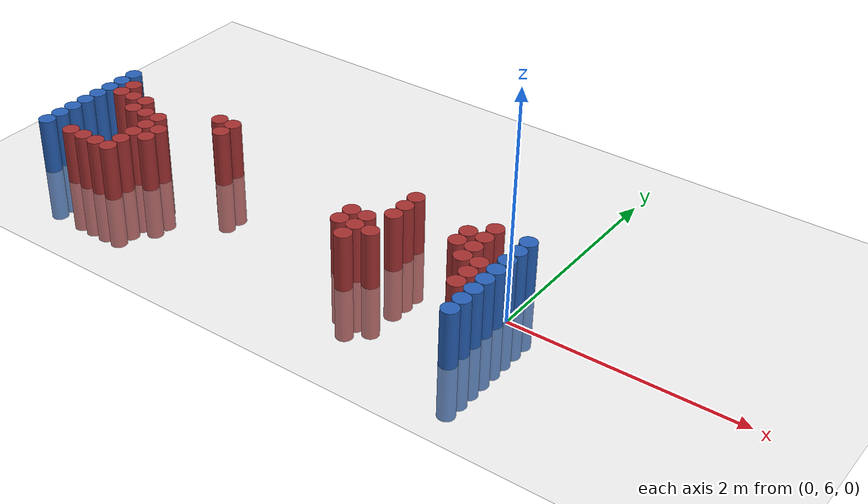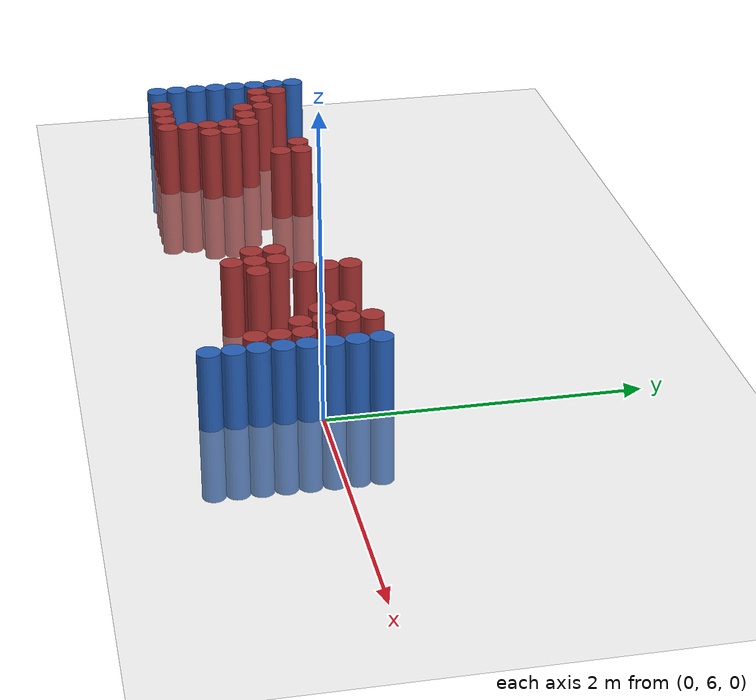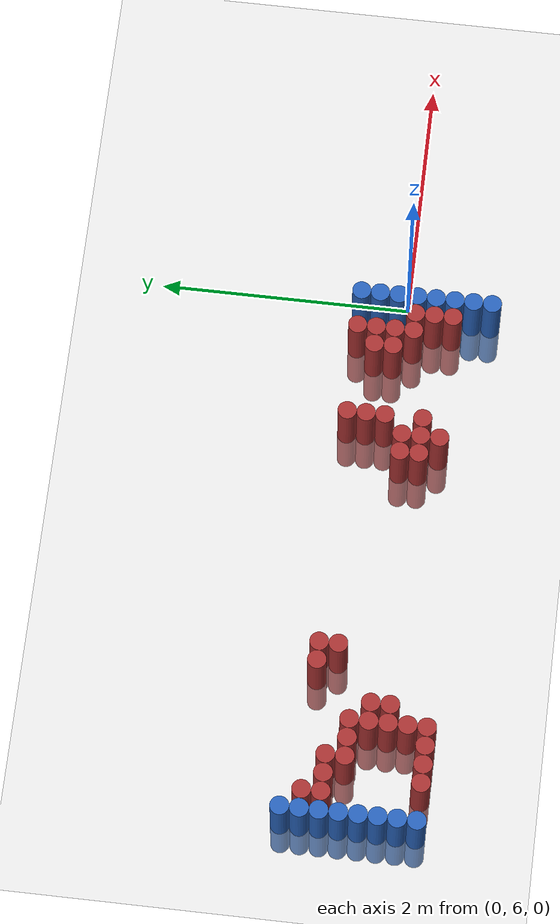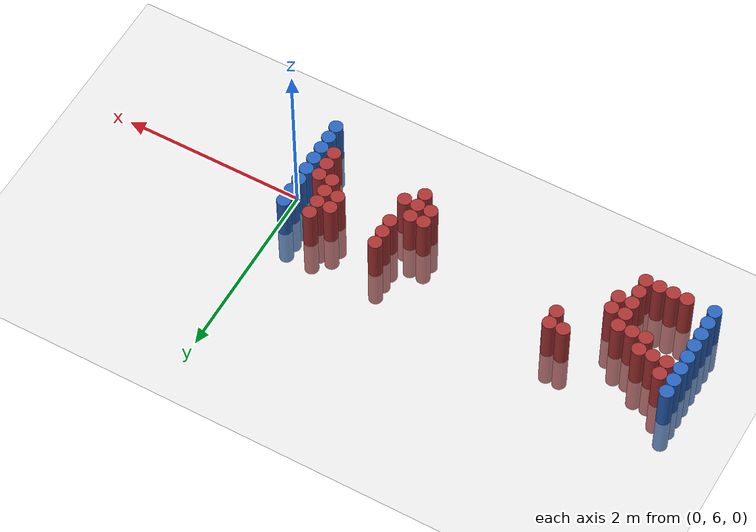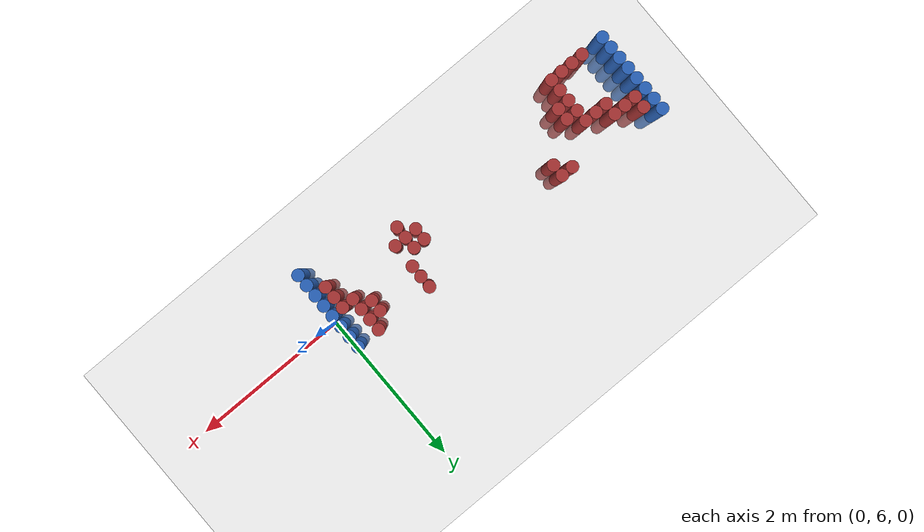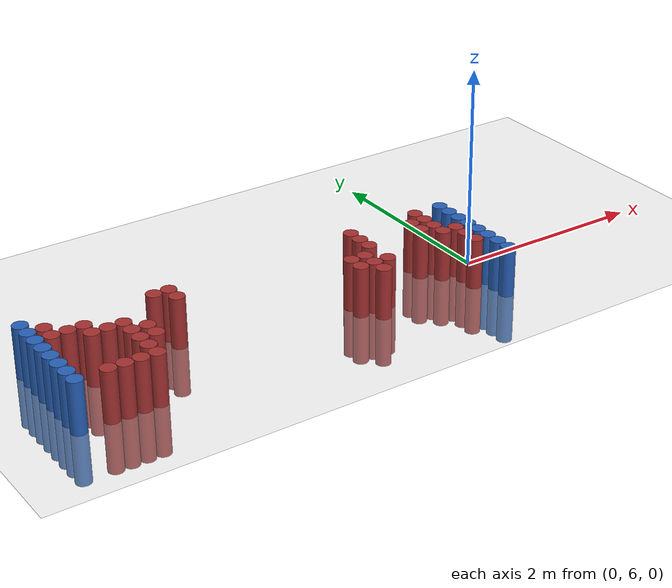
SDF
<sdf version="1.6">
 <world name="default">
  <model name="ground_plane">
   <static>1</static>
   <link name="link">
    <collision name="collision">
     <geometry><plane><normal>0 0 1</normal><size>100 100</size></plane></geometry>
     <surface><friction><ode><mu>100</mu><mu2>50</mu2></ode></friction></surface>
    </collision>
    <visual name="visual">
     <cast_shadows>0</cast_shadows>
     <geometry><plane><normal>0 0 1</normal><size>100 100</size></plane></geometry>
     <material>
      <script><uri>file://media/materials/scripts/gazebo.material</uri><name>Gazebo/Grey</name></script>
     </material>
    </visual>
   </link>
  </model>
  <model name="unit_cylinder_98">
   <static>1</static>
   <pose>-4.425000 5.475000 0.000000 0.000000 0.000000 0.000000</pose>
   <link name="link">
    <inertial>
     <mass>1</mass>
     <inertia><ixx>0.145833</ixx><ixy>0</ixy><ixz>0</ixz><iyy>0.145833</iyy><iyz>0</iyz><izz>0.125</izz></inertia>
    </inertial>
    <collision name="collision">
     <geometry><cylinder><radius>0.075000</radius><length>1</length></cylinder></geometry>
    </collision>
    <visual name="visual">
     <geometry><cylinder><radius>0.075000</radius><length>1</length></cylinder></geometry>
     <material>
      <ambient>0.152000 0.379000 0.720000 1</ambient>
      <diffuse>0.152000 0.379000 0.720000 1</diffuse>
     </material>
     <material>
      <script><name>Gazebo/Grey</name><uri>file://media/materials/scripts/gazebo.material</uri></script>
     </material>
    </visual>
   </link>
  </model>
  <model name="unit_cylinder_99">
   <static>1</static>
   <pose>-4.425000 5.625000 0.000000 0.000000 0.000000 0.000000</pose>
   <link name="link">
    <inertial>
     <mass>1</mass>
     <inertia><ixx>0.145833</ixx><ixy>0</ixy><ixz>0</ixz><iyy>0.145833</iyy><iyz>0</iyz><izz>0.125</izz></inertia>
    </inertial>
    <collision name="collision">
     <geometry><cylinder><radius>0.075000</radius><length>1</length></cylinder></geometry>
    </collision>
    <visual name="visual">
     <geometry><cylinder><radius>0.075000</radius><length>1</length></cylinder></geometry>
     <material>
      <ambient>0.152000 0.379000 0.720000 1</ambient>
      <diffuse>0.152000 0.379000 0.720000 1</diffuse>
     </material>
     <material>
      <script><name>Gazebo/Grey</name><uri>file://media/materials/scripts/gazebo.material</uri></script>
     </material>
    </visual>
   </link>
  </model>
  <model name="unit_cylinder_100">
   <static>1</static>
   <pose>-4.425000 5.775000 0.000000 0.000000 0.000000 0.000000</pose>
   <link name="link">
    <inertial>
     <mass>1</mass>
     <inertia><ixx>0.145833</ixx><ixy>0</ixy><ixz>0</ixz><iyy>0.145833</iyy><iyz>0</iyz><izz>0.125</izz></inertia>
    </inertial>
    <collision name="collision">
     <geometry><cylinder><radius>0.075000</radius><length>1</length></cylinder></geometry>
    </collision>
    <visual name="visual">
     <geometry><cylinder><radius>0.075000</radius><length>1</length></cylinder></geometry>
     <material>
      <ambient>0.152000 0.379000 0.720000 1</ambient>
      <diffuse>0.152000 0.379000 0.720000 1</diffuse>
     </material>
     <material>
      <script><name>Gazebo/Grey</name><uri>file://media/materials/scripts/gazebo.material</uri></script>
     </material>
    </visual>
   </link>
  </model>
  <model name="unit_cylinder_101">
   <static>1</static>
   <pose>-4.425000 5.925000 0.000000 0.000000 0.000000 0.000000</pose>
   <link name="link">
    <inertial>
     <mass>1</mass>
     <inertia><ixx>0.145833</ixx><ixy>0</ixy><ixz>0</ixz><iyy>0.145833</iyy><iyz>0</iyz><izz>0.125</izz></inertia>
    </inertial>
    <collision name="collision">
     <geometry><cylinder><radius>0.075000</radius><length>1</length></cylinder></geometry>
    </collision>
    <visual name="visual">
     <geometry><cylinder><radius>0.075000</radius><length>1</length></cylinder></geometry>
     <material>
      <ambient>0.152000 0.379000 0.720000 1</ambient>
      <diffuse>0.152000 0.379000 0.720000 1</diffuse>
     </material>
     <material>
      <script><name>Gazebo/Grey</name><uri>file://media/materials/scripts/gazebo.material</uri></script>
     </material>
    </visual>
   </link>
  </model>
  <model name="unit_cylinder_102">
   <static>1</static>
   <pose>-4.425000 6.075000 0.000000 0.000000 0.000000 0.000000</pose>
   <link name="link">
    <inertial>
     <mass>1</mass>
     <inertia><ixx>0.145833</ixx><ixy>0</ixy><ixz>0</ixz><iyy>0.145833</iyy><iyz>0</iyz><izz>0.125</izz></inertia>
    </inertial>
    <collision name="collision">
     <geometry><cylinder><radius>0.075000</radius><length>1</length></cylinder></geometry>
    </collision>
    <visual name="visual">
     <geometry><cylinder><radius>0.075000</radius><length>1</length></cylinder></geometry>
     <material>
      <ambient>0.152000 0.379000 0.720000 1</ambient>
      <diffuse>0.152000 0.379000 0.720000 1</diffuse>
     </material>
     <material>
      <script><name>Gazebo/Grey</name><uri>file://media/materials/scripts/gazebo.material</uri></script>
     </material>
    </visual>
   </link>
  </model>
  <model name="unit_cylinder_103">
   <static>1</static>
   <pose>-4.425000 6.225000 0.000000 0.000000 0.000000 0.000000</pose>
   <link name="link">
    <inertial>
     <mass>1</mass>
     <inertia><ixx>0.145833</ixx><ixy>0</ixy><ixz>0</ixz><iyy>0.145833</iyy><iyz>0</iyz><izz>0.125</izz></inertia>
    </inertial>
    <collision name="collision">
     <geometry><cylinder><radius>0.075000</radius><length>1</length></cylinder></geometry>
    </collision>
    <visual name="visual">
     <geometry><cylinder><radius>0.075000</radius><length>1</length></cylinder></geometry>
     <material>
      <ambient>0.152000 0.379000 0.720000 1</ambient>
      <diffuse>0.152000 0.379000 0.720000 1</diffuse>
     </material>
     <material>
      <script><name>Gazebo/Grey</name><uri>file://media/materials/scripts/gazebo.material</uri></script>
     </material>
    </visual>
   </link>
  </model>
  <model name="unit_cylinder_104">
   <static>1</static>
   <pose>-4.425000 6.375000 0.000000 0.000000 0.000000 0.000000</pose>
   <link name="link">
    <inertial>
     <mass>1</mass>
     <inertia><ixx>0.145833</ixx><ixy>0</ixy><ixz>0</ixz><iyy>0.145833</iyy><iyz>0</iyz><izz>0.125</izz></inertia>
    </inertial>
    <collision name="collision">
     <geometry><cylinder><radius>0.075000</radius><length>1</length></cylinder></geometry>
    </collision>
    <visual name="visual">
     <geometry><cylinder><radius>0.075000</radius><length>1</length></cylinder></geometry>
     <material>
      <ambient>0.152000 0.379000 0.720000 1</ambient>
      <diffuse>0.152000 0.379000 0.720000 1</diffuse>
     </material>
     <material>
      <script><name>Gazebo/Grey</name><uri>file://media/materials/scripts/gazebo.material</uri></script>
     </material>
    </visual>
   </link>
  </model>
  <model name="unit_cylinder_105">
   <static>1</static>
   <pose>-4.425000 6.525000 0.000000 0.000000 0.000000 0.000000</pose>
   <link name="link">
    <inertial>
     <mass>1</mass>
     <inertia><ixx>0.145833</ixx><ixy>0</ixy><ixz>0</ixz><iyy>0.145833</iyy><iyz>0</iyz><izz>0.125</izz></inertia>
    </inertial>
    <collision name="collision">
     <geometry><cylinder><radius>0.075000</radius><length>1</length></cylinder></geometry>
    </collision>
    <visual name="visual">
     <geometry><cylinder><radius>0.075000</radius><length>1</length></cylinder></geometry>
     <material>
      <ambient>0.152000 0.379000 0.720000 1</ambient>
      <diffuse>0.152000 0.379000 0.720000 1</diffuse>
     </material>
     <material>
      <script><name>Gazebo/Grey</name><uri>file://media/materials/scripts/gazebo.material</uri></script>
     </material>
    </visual>
   </link>
  </model>
  <model name="unit_cylinder_127">
   <static>1</static>
   <pose>-4.275000 6.225000 0.000000 0.000000 0.000000 0.000000</pose>
   <link name="link">
    <inertial>
     <mass>1</mass>
     <inertia><ixx>0.145833</ixx><ixy>0</ixy><ixz>0</ixz><iyy>0.145833</iyy><iyz>0</iyz><izz>0.125</izz></inertia>
    </inertial>
    <collision name="collision">
     <geometry><cylinder><radius>0.075000</radius><length>1</length></cylinder></geometry>
    </collision>
    <visual name="visual">
     <geometry><cylinder><radius>0.075000</radius><length>1</length></cylinder></geometry>
     <material>
      <ambient>0.648000 0.192000 0.192000 1</ambient>
      <diffuse>0.648000 0.192000 0.192000 1</diffuse>
     </material>
     <material>
      <script><name>Gazebo/Grey</name><uri>file://media/materials/scripts/gazebo.material</uri></script>
     </material>
    </visual>
   </link>
  </model>
  <model name="unit_cylinder_128">
   <static>1</static>
   <pose>-4.275000 6.375000 0.000000 0.000000 0.000000 0.000000</pose>
   <link name="link">
    <inertial>
     <mass>1</mass>
     <inertia><ixx>0.145833</ixx><ixy>0</ixy><ixz>0</ixz><iyy>0.145833</iyy><iyz>0</iyz><izz>0.125</izz></inertia>
    </inertial>
    <collision name="collision">
     <geometry><cylinder><radius>0.075000</radius><length>1</length></cylinder></geometry>
    </collision>
    <visual name="visual">
     <geometry><cylinder><radius>0.075000</radius><length>1</length></cylinder></geometry>
     <material>
      <ambient>0.648000 0.192000 0.192000 1</ambient>
      <diffuse>0.648000 0.192000 0.192000 1</diffuse>
     </material>
     <material>
      <script><name>Gazebo/Grey</name><uri>file://media/materials/scripts/gazebo.material</uri></script>
     </material>
    </visual>
   </link>
  </model>
  <model name="unit_cylinder_139">
   <static>1</static>
   <pose>-4.125000 5.475000 0.000000 0.000000 0.000000 0.000000</pose>
   <link name="link">
    <inertial>
     <mass>1</mass>
     <inertia><ixx>0.145833</ixx><ixy>0</ixy><ixz>0</ixz><iyy>0.145833</iyy><iyz>0</iyz><izz>0.125</izz></inertia>
    </inertial>
    <collision name="collision">
     <geometry><cylinder><radius>0.075000</radius><length>1</length></cylinder></geometry>
    </collision>
    <visual name="visual">
     <geometry><cylinder><radius>0.075000</radius><length>1</length></cylinder></geometry>
     <material>
      <ambient>0.648000 0.192000 0.192000 1</ambient>
      <diffuse>0.648000 0.192000 0.192000 1</diffuse>
     </material>
     <material>
      <script><name>Gazebo/Grey</name><uri>file://media/materials/scripts/gazebo.material</uri></script>
     </material>
    </visual>
   </link>
  </model>
  <model name="unit_cylinder_140">
   <static>1</static>
   <pose>-4.125000 6.225000 0.000000 0.000000 0.000000 0.000000</pose>
   <link name="link">
    <inertial>
     <mass>1</mass>
     <inertia><ixx>0.145833</ixx><ixy>0</ixy><ixz>0</ixz><iyy>0.145833</iyy><iyz>0</iyz><izz>0.125</izz></inertia>
    </inertial>
    <collision name="collision">
     <geometry><cylinder><radius>0.075000</radius><length>1</length></cylinder></geometry>
    </collision>
    <visual name="visual">
     <geometry><cylinder><radius>0.075000</radius><length>1</length></cylinder></geometry>
     <material>
      <ambient>0.648000 0.192000 0.192000 1</ambient>
      <diffuse>0.648000 0.192000 0.192000 1</diffuse>
     </material>
     <material>
      <script><name>Gazebo/Grey</name><uri>file://media/materials/scripts/gazebo.material</uri></script>
     </material>
    </visual>
   </link>
  </model>
  <model name="unit_cylinder_153">
   <static>1</static>
   <pose>-3.975000 5.475000 0.000000 0.000000 0.000000 0.000000</pose>
   <link name="link">
    <inertial>
     <mass>1</mass>
     <inertia><ixx>0.145833</ixx><ixy>0</ixy><ixz>0</ixz><iyy>0.145833</iyy><iyz>0</iyz><izz>0.125</izz></inertia>
    </inertial>
    <collision name="collision">
     <geometry><cylinder><radius>0.075000</radius><length>1</length></cylinder></geometry>
    </collision>
    <visual name="visual">
     <geometry><cylinder><radius>0.075000</radius><length>1</length></cylinder></geometry>
     <material>
      <ambient>0.648000 0.192000 0.192000 1</ambient>
      <diffuse>0.648000 0.192000 0.192000 1</diffuse>
     </material>
     <material>
      <script><name>Gazebo/Grey</name><uri>file://media/materials/scripts/gazebo.material</uri></script>
     </material>
    </visual>
   </link>
  </model>
  <model name="unit_cylinder_154">
   <static>1</static>
   <pose>-3.975000 6.075000 0.000000 0.000000 0.000000 0.000000</pose>
   <link name="link">
    <inertial>
     <mass>1</mass>
     <inertia><ixx>0.145833</ixx><ixy>0</ixy><ixz>0</ixz><iyy>0.145833</iyy><iyz>0</iyz><izz>0.125</izz></inertia>
    </inertial>
    <collision name="collision">
     <geometry><cylinder><radius>0.075000</radius><length>1</length></cylinder></geometry>
    </collision>
    <visual name="visual">
     <geometry><cylinder><radius>0.075000</radius><length>1</length></cylinder></geometry>
     <material>
      <ambient>0.648000 0.192000 0.192000 1</ambient>
      <diffuse>0.648000 0.192000 0.192000 1</diffuse>
     </material>
     <material>
      <script><name>Gazebo/Grey</name><uri>file://media/materials/scripts/gazebo.material</uri></script>
     </material>
    </visual>
   </link>
  </model>
  <model name="unit_cylinder_155">
   <static>1</static>
   <pose>-3.975000 6.225000 0.000000 0.000000 0.000000 0.000000</pose>
   <link name="link">
    <inertial>
     <mass>1</mass>
     <inertia><ixx>0.145833</ixx><ixy>0</ixy><ixz>0</ixz><iyy>0.145833</iyy><iyz>0</iyz><izz>0.125</izz></inertia>
    </inertial>
    <collision name="collision">
     <geometry><cylinder><radius>0.075000</radius><length>1</length></cylinder></geometry>
    </collision>
    <visual name="visual">
     <geometry><cylinder><radius>0.075000</radius><length>1</length></cylinder></geometry>
     <material>
      <ambient>0.648000 0.192000 0.192000 1</ambient>
      <diffuse>0.648000 0.192000 0.192000 1</diffuse>
     </material>
     <material>
      <script><name>Gazebo/Grey</name><uri>file://media/materials/scripts/gazebo.material</uri></script>
     </material>
    </visual>
   </link>
  </model>
  <model name="unit_cylinder_161">
   <static>1</static>
   <pose>-3.825000 5.475000 0.000000 0.000000 0.000000 0.000000</pose>
   <link name="link">
    <inertial>
     <mass>1</mass>
     <inertia><ixx>0.145833</ixx><ixy>0</ixy><ixz>0</ixz><iyy>0.145833</iyy><iyz>0</iyz><izz>0.125</izz></inertia>
    </inertial>
    <collision name="collision">
     <geometry><cylinder><radius>0.075000</radius><length>1</length></cylinder></geometry>
    </collision>
    <visual name="visual">
     <geometry><cylinder><radius>0.075000</radius><length>1</length></cylinder></geometry>
     <material>
      <ambient>0.648000 0.192000 0.192000 1</ambient>
      <diffuse>0.648000 0.192000 0.192000 1</diffuse>
     </material>
     <material>
      <script><name>Gazebo/Grey</name><uri>file://media/materials/scripts/gazebo.material</uri></script>
     </material>
    </visual>
   </link>
  </model>
  <model name="unit_cylinder_162">
   <static>1</static>
   <pose>-3.825000 6.075000 0.000000 0.000000 0.000000 0.000000</pose>
   <link name="link">
    <inertial>
     <mass>1</mass>
     <inertia><ixx>0.145833</ixx><ixy>0</ixy><ixz>0</ixz><iyy>0.145833</iyy><iyz>0</iyz><izz>0.125</izz></inertia>
    </inertial>
    <collision name="collision">
     <geometry><cylinder><radius>0.075000</radius><length>1</length></cylinder></geometry>
    </collision>
    <visual name="visual">
     <geometry><cylinder><radius>0.075000</radius><length>1</length></cylinder></geometry>
     <material>
      <ambient>0.648000 0.192000 0.192000 1</ambient>
      <diffuse>0.648000 0.192000 0.192000 1</diffuse>
     </material>
     <material>
      <script><name>Gazebo/Grey</name><uri>file://media/materials/scripts/gazebo.material</uri></script>
     </material>
    </visual>
   </link>
  </model>
  <model name="unit_cylinder_166">
   <static>1</static>
   <pose>-3.675000 5.475000 0.000000 0.000000 0.000000 0.000000</pose>
   <link name="link">
    <inertial>
     <mass>1</mass>
     <inertia><ixx>0.145833</ixx><ixy>0</ixy><ixz>0</ixz><iyy>0.145833</iyy><iyz>0</iyz><izz>0.125</izz></inertia>
    </inertial>
    <collision name="collision">
     <geometry><cylinder><radius>0.075000</radius><length>1</length></cylinder></geometry>
    </collision>
    <visual name="visual">
     <geometry><cylinder><radius>0.075000</radius><length>1</length></cylinder></geometry>
     <material>
      <ambient>0.648000 0.192000 0.192000 1</ambient>
      <diffuse>0.648000 0.192000 0.192000 1</diffuse>
     </material>
     <material>
      <script><name>Gazebo/Grey</name><uri>file://media/materials/scripts/gazebo.material</uri></script>
     </material>
    </visual>
   </link>
  </model>
  <model name="unit_cylinder_167">
   <static>1</static>
   <pose>-3.675000 5.625000 0.000000 0.000000 0.000000 0.000000</pose>
   <link name="link">
    <inertial>
     <mass>1</mass>
     <inertia><ixx>0.145833</ixx><ixy>0</ixy><ixz>0</ixz><iyy>0.145833</iyy><iyz>0</iyz><izz>0.125</izz></inertia>
    </inertial>
    <collision name="collision">
     <geometry><cylinder><radius>0.075000</radius><length>1</length></cylinder></geometry>
    </collision>
    <visual name="visual">
     <geometry><cylinder><radius>0.075000</radius><length>1</length></cylinder></geometry>
     <material>
      <ambient>0.648000 0.192000 0.192000 1</ambient>
      <diffuse>0.648000 0.192000 0.192000 1</diffuse>
     </material>
     <material>
      <script><name>Gazebo/Grey</name><uri>file://media/materials/scripts/gazebo.material</uri></script>
     </material>
    </visual>
   </link>
  </model>
  <model name="unit_cylinder_168">
   <static>1</static>
   <pose>-3.675000 5.775000 0.000000 0.000000 0.000000 0.000000</pose>
   <link name="link">
    <inertial>
     <mass>1</mass>
     <inertia><ixx>0.145833</ixx><ixy>0</ixy><ixz>0</ixz><iyy>0.145833</iyy><iyz>0</iyz><izz>0.125</izz></inertia>
    </inertial>
    <collision name="collision">
     <geometry><cylinder><radius>0.075000</radius><length>1</length></cylinder></geometry>
    </collision>
    <visual name="visual">
     <geometry><cylinder><radius>0.075000</radius><length>1</length></cylinder></geometry>
     <material>
      <ambient>0.648000 0.192000 0.192000 1</ambient>
      <diffuse>0.648000 0.192000 0.192000 1</diffuse>
     </material>
     <material>
      <script><name>Gazebo/Grey</name><uri>file://media/materials/scripts/gazebo.material</uri></script>
     </material>
    </visual>
   </link>
  </model>
  <model name="unit_cylinder_169">
   <static>1</static>
   <pose>-3.675000 5.925000 0.000000 0.000000 0.000000 0.000000</pose>
   <link name="link">
    <inertial>
     <mass>1</mass>
     <inertia><ixx>0.145833</ixx><ixy>0</ixy><ixz>0</ixz><iyy>0.145833</iyy><iyz>0</iyz><izz>0.125</izz></inertia>
    </inertial>
    <collision name="collision">
     <geometry><cylinder><radius>0.075000</radius><length>1</length></cylinder></geometry>
    </collision>
    <visual name="visual">
     <geometry><cylinder><radius>0.075000</radius><length>1</length></cylinder></geometry>
     <material>
      <ambient>0.648000 0.192000 0.192000 1</ambient>
      <diffuse>0.648000 0.192000 0.192000 1</diffuse>
     </material>
     <material>
      <script><name>Gazebo/Grey</name><uri>file://media/materials/scripts/gazebo.material</uri></script>
     </material>
    </visual>
   </link>
  </model>
  <model name="unit_cylinder_170">
   <static>1</static>
   <pose>-3.675000 6.075000 0.000000 0.000000 0.000000 0.000000</pose>
   <link name="link">
    <inertial>
     <mass>1</mass>
     <inertia><ixx>0.145833</ixx><ixy>0</ixy><ixz>0</ixz><iyy>0.145833</iyy><iyz>0</iyz><izz>0.125</izz></inertia>
    </inertial>
    <collision name="collision">
     <geometry><cylinder><radius>0.075000</radius><length>1</length></cylinder></geometry>
    </collision>
    <visual name="visual">
     <geometry><cylinder><radius>0.075000</radius><length>1</length></cylinder></geometry>
     <material>
      <ambient>0.648000 0.192000 0.192000 1</ambient>
      <diffuse>0.648000 0.192000 0.192000 1</diffuse>
     </material>
     <material>
      <script><name>Gazebo/Grey</name><uri>file://media/materials/scripts/gazebo.material</uri></script>
     </material>
    </visual>
   </link>
  </model>
  <model name="unit_cylinder_171">
   <static>1</static>
   <pose>-3.525000 5.775000 0.000000 0.000000 0.000000 0.000000</pose>
   <link name="link">
    <inertial>
     <mass>1</mass>
     <inertia><ixx>0.145833</ixx><ixy>0</ixy><ixz>0</ixz><iyy>0.145833</iyy><iyz>0</iyz><izz>0.125</izz></inertia>
    </inertial>
    <collision name="collision">
     <geometry><cylinder><radius>0.075000</radius><length>1</length></cylinder></geometry>
    </collision>
    <visual name="visual">
     <geometry><cylinder><radius>0.075000</radius><length>1</length></cylinder></geometry>
     <material>
      <ambient>0.648000 0.192000 0.192000 1</ambient>
      <diffuse>0.648000 0.192000 0.192000 1</diffuse>
     </material>
     <material>
      <script><name>Gazebo/Grey</name><uri>file://media/materials/scripts/gazebo.material</uri></script>
     </material>
    </visual>
   </link>
  </model>
  <model name="unit_cylinder_172">
   <static>1</static>
   <pose>-3.525000 5.925000 0.000000 0.000000 0.000000 0.000000</pose>
   <link name="link">
    <inertial>
     <mass>1</mass>
     <inertia><ixx>0.145833</ixx><ixy>0</ixy><ixz>0</ixz><iyy>0.145833</iyy><iyz>0</iyz><izz>0.125</izz></inertia>
    </inertial>
    <collision name="collision">
     <geometry><cylinder><radius>0.075000</radius><length>1</length></cylinder></geometry>
    </collision>
    <visual name="visual">
     <geometry><cylinder><radius>0.075000</radius><length>1</length></cylinder></geometry>
     <material>
      <ambient>0.648000 0.192000 0.192000 1</ambient>
      <diffuse>0.648000 0.192000 0.192000 1</diffuse>
     </material>
     <material>
      <script><name>Gazebo/Grey</name><uri>file://media/materials/scripts/gazebo.material</uri></script>
     </material>
    </visual>
   </link>
  </model>
  <model name="unit_cylinder_173">
   <static>1</static>
   <pose>-3.225000 6.375000 0.000000 0.000000 0.000000 0.000000</pose>
   <link name="link">
    <inertial>
     <mass>1</mass>
     <inertia><ixx>0.145833</ixx><ixy>0</ixy><ixz>0</ixz><iyy>0.145833</iyy><iyz>0</iyz><izz>0.125</izz></inertia>
    </inertial>
    <collision name="collision">
     <geometry><cylinder><radius>0.075000</radius><length>1</length></cylinder></geometry>
    </collision>
    <visual name="visual">
     <geometry><cylinder><radius>0.075000</radius><length>1</length></cylinder></geometry>
     <material>
      <ambient>0.648000 0.192000 0.192000 1</ambient>
      <diffuse>0.648000 0.192000 0.192000 1</diffuse>
     </material>
     <material>
      <script><name>Gazebo/Grey</name><uri>file://media/materials/scripts/gazebo.material</uri></script>
     </material>
    </visual>
   </link>
  </model>
  <model name="unit_cylinder_174">
   <static>1</static>
   <pose>-3.075000 6.225000 0.000000 0.000000 0.000000 0.000000</pose>
   <link name="link">
    <inertial>
     <mass>1</mass>
     <inertia><ixx>0.145833</ixx><ixy>0</ixy><ixz>0</ixz><iyy>0.145833</iyy><iyz>0</iyz><izz>0.125</izz></inertia>
    </inertial>
    <collision name="collision">
     <geometry><cylinder><radius>0.075000</radius><length>1</length></cylinder></geometry>
    </collision>
    <visual name="visual">
     <geometry><cylinder><radius>0.075000</radius><length>1</length></cylinder></geometry>
     <material>
      <ambient>0.648000 0.192000 0.192000 1</ambient>
      <diffuse>0.648000 0.192000 0.192000 1</diffuse>
     </material>
     <material>
      <script><name>Gazebo/Grey</name><uri>file://media/materials/scripts/gazebo.material</uri></script>
     </material>
    </visual>
   </link>
  </model>
  <model name="unit_cylinder_175">
   <static>1</static>
   <pose>-3.075000 6.375000 0.000000 0.000000 0.000000 0.000000</pose>
   <link name="link">
    <inertial>
     <mass>1</mass>
     <inertia><ixx>0.145833</ixx><ixy>0</ixy><ixz>0</ixz><iyy>0.145833</iyy><iyz>0</iyz><izz>0.125</izz></inertia>
    </inertial>
    <collision name="collision">
     <geometry><cylinder><radius>0.075000</radius><length>1</length></cylinder></geometry>
    </collision>
    <visual name="visual">
     <geometry><cylinder><radius>0.075000</radius><length>1</length></cylinder></geometry>
     <material>
      <ambient>0.648000 0.192000 0.192000 1</ambient>
      <diffuse>0.648000 0.192000 0.192000 1</diffuse>
     </material>
     <material>
      <script><name>Gazebo/Grey</name><uri>file://media/materials/scripts/gazebo.material</uri></script>
     </material>
    </visual>
   </link>
  </model>
  <model name="unit_cylinder_225">
   <static>1</static>
   <pose>-1.425000 5.775000 0.000000 0.000000 0.000000 0.000000</pose>
   <link name="link">
    <inertial>
     <mass>1</mass>
     <inertia><ixx>0.145833</ixx><ixy>0</ixy><ixz>0</ixz><iyy>0.145833</iyy><iyz>0</iyz><izz>0.125</izz></inertia>
    </inertial>
    <collision name="collision">
     <geometry><cylinder><radius>0.075000</radius><length>1</length></cylinder></geometry>
    </collision>
    <visual name="visual">
     <geometry><cylinder><radius>0.075000</radius><length>1</length></cylinder></geometry>
     <material>
      <ambient>0.648000 0.192000 0.192000 1</ambient>
      <diffuse>0.648000 0.192000 0.192000 1</diffuse>
     </material>
     <material>
      <script><name>Gazebo/Grey</name><uri>file://media/materials/scripts/gazebo.material</uri></script>
     </material>
    </visual>
   </link>
  </model>
  <model name="unit_cylinder_226">
   <static>1</static>
   <pose>-1.425000 5.925000 0.000000 0.000000 0.000000 0.000000</pose>
   <link name="link">
    <inertial>
     <mass>1</mass>
     <inertia><ixx>0.145833</ixx><ixy>0</ixy><ixz>0</ixz><iyy>0.145833</iyy><iyz>0</iyz><izz>0.125</izz></inertia>
    </inertial>
    <collision name="collision">
     <geometry><cylinder><radius>0.075000</radius><length>1</length></cylinder></geometry>
    </collision>
    <visual name="visual">
     <geometry><cylinder><radius>0.075000</radius><length>1</length></cylinder></geometry>
     <material>
      <ambient>0.648000 0.192000 0.192000 1</ambient>
      <diffuse>0.648000 0.192000 0.192000 1</diffuse>
     </material>
     <material>
      <script><name>Gazebo/Grey</name><uri>file://media/materials/scripts/gazebo.material</uri></script>
     </material>
    </visual>
   </link>
  </model>
  <model name="unit_cylinder_229">
   <static>1</static>
   <pose>-1.275000 5.625000 0.000000 0.000000 0.000000 0.000000</pose>
   <link name="link">
    <inertial>
     <mass>1</mass>
     <inertia><ixx>0.145833</ixx><ixy>0</ixy><ixz>0</ixz><iyy>0.145833</iyy><iyz>0</iyz><izz>0.125</izz></inertia>
    </inertial>
    <collision name="collision">
     <geometry><cylinder><radius>0.075000</radius><length>1</length></cylinder></geometry>
    </collision>
    <visual name="visual">
     <geometry><cylinder><radius>0.075000</radius><length>1</length></cylinder></geometry>
     <material>
      <ambient>0.648000 0.192000 0.192000 1</ambient>
      <diffuse>0.648000 0.192000 0.192000 1</diffuse>
     </material>
     <material>
      <script><name>Gazebo/Grey</name><uri>file://media/materials/scripts/gazebo.material</uri></script>
     </material>
    </visual>
   </link>
  </model>
  <model name="unit_cylinder_230">
   <static>1</static>
   <pose>-1.275000 5.775000 0.000000 0.000000 0.000000 0.000000</pose>
   <link name="link">
    <inertial>
     <mass>1</mass>
     <inertia><ixx>0.145833</ixx><ixy>0</ixy><ixz>0</ixz><iyy>0.145833</iyy><iyz>0</iyz><izz>0.125</izz></inertia>
    </inertial>
    <collision name="collision">
     <geometry><cylinder><radius>0.075000</radius><length>1</length></cylinder></geometry>
    </collision>
    <visual name="visual">
     <geometry><cylinder><radius>0.075000</radius><length>1</length></cylinder></geometry>
     <material>
      <ambient>0.648000 0.192000 0.192000 1</ambient>
      <diffuse>0.648000 0.192000 0.192000 1</diffuse>
     </material>
     <material>
      <script><name>Gazebo/Grey</name><uri>file://media/materials/scripts/gazebo.material</uri></script>
     </material>
    </visual>
   </link>
  </model>
  <model name="unit_cylinder_231">
   <static>1</static>
   <pose>-1.275000 5.925000 0.000000 0.000000 0.000000 0.000000</pose>
   <link name="link">
    <inertial>
     <mass>1</mass>
     <inertia><ixx>0.145833</ixx><ixy>0</ixy><ixz>0</ixz><iyy>0.145833</iyy><iyz>0</iyz><izz>0.125</izz></inertia>
    </inertial>
    <collision name="collision">
     <geometry><cylinder><radius>0.075000</radius><length>1</length></cylinder></geometry>
    </collision>
    <visual name="visual">
     <geometry><cylinder><radius>0.075000</radius><length>1</length></cylinder></geometry>
     <material>
      <ambient>0.648000 0.192000 0.192000 1</ambient>
      <diffuse>0.648000 0.192000 0.192000 1</diffuse>
     </material>
     <material>
      <script><name>Gazebo/Grey</name><uri>file://media/materials/scripts/gazebo.material</uri></script>
     </material>
    </visual>
   </link>
  </model>
  <model name="unit_cylinder_238">
   <static>1</static>
   <pose>-1.125000 5.775000 0.000000 0.000000 0.000000 0.000000</pose>
   <link name="link">
    <inertial>
     <mass>1</mass>
     <inertia><ixx>0.145833</ixx><ixy>0</ixy><ixz>0</ixz><iyy>0.145833</iyy><iyz>0</iyz><izz>0.125</izz></inertia>
    </inertial>
    <collision name="collision">
     <geometry><cylinder><radius>0.075000</radius><length>1</length></cylinder></geometry>
    </collision>
    <visual name="visual">
     <geometry><cylinder><radius>0.075000</radius><length>1</length></cylinder></geometry>
     <material>
      <ambient>0.648000 0.192000 0.192000 1</ambient>
      <diffuse>0.648000 0.192000 0.192000 1</diffuse>
     </material>
     <material>
      <script><name>Gazebo/Grey</name><uri>file://media/materials/scripts/gazebo.material</uri></script>
     </material>
    </visual>
   </link>
  </model>
  <model name="unit_cylinder_239">
   <static>1</static>
   <pose>-1.125000 6.075000 0.000000 0.000000 0.000000 0.000000</pose>
   <link name="link">
    <inertial>
     <mass>1</mass>
     <inertia><ixx>0.145833</ixx><ixy>0</ixy><ixz>0</ixz><iyy>0.145833</iyy><iyz>0</iyz><izz>0.125</izz></inertia>
    </inertial>
    <collision name="collision">
     <geometry><cylinder><radius>0.075000</radius><length>1</length></cylinder></geometry>
    </collision>
    <visual name="visual">
     <geometry><cylinder><radius>0.075000</radius><length>1</length></cylinder></geometry>
     <material>
      <ambient>0.648000 0.192000 0.192000 1</ambient>
      <diffuse>0.648000 0.192000 0.192000 1</diffuse>
     </material>
     <material>
      <script><name>Gazebo/Grey</name><uri>file://media/materials/scripts/gazebo.material</uri></script>
     </material>
    </visual>
   </link>
  </model>
  <model name="unit_cylinder_240">
   <static>1</static>
   <pose>-1.125000 6.225000 0.000000 0.000000 0.000000 0.000000</pose>
   <link name="link">
    <inertial>
     <mass>1</mass>
     <inertia><ixx>0.145833</ixx><ixy>0</ixy><ixz>0</ixz><iyy>0.145833</iyy><iyz>0</iyz><izz>0.125</izz></inertia>
    </inertial>
    <collision name="collision">
     <geometry><cylinder><radius>0.075000</radius><length>1</length></cylinder></geometry>
    </collision>
    <visual name="visual">
     <geometry><cylinder><radius>0.075000</radius><length>1</length></cylinder></geometry>
     <material>
      <ambient>0.648000 0.192000 0.192000 1</ambient>
      <diffuse>0.648000 0.192000 0.192000 1</diffuse>
     </material>
     <material>
      <script><name>Gazebo/Grey</name><uri>file://media/materials/scripts/gazebo.material</uri></script>
     </material>
    </visual>
   </link>
  </model>
  <model name="unit_cylinder_241">
   <static>1</static>
   <pose>-1.125000 6.375000 0.000000 0.000000 0.000000 0.000000</pose>
   <link name="link">
    <inertial>
     <mass>1</mass>
     <inertia><ixx>0.145833</ixx><ixy>0</ixy><ixz>0</ixz><iyy>0.145833</iyy><iyz>0</iyz><izz>0.125</izz></inertia>
    </inertial>
    <collision name="collision">
     <geometry><cylinder><radius>0.075000</radius><length>1</length></cylinder></geometry>
    </collision>
    <visual name="visual">
     <geometry><cylinder><radius>0.075000</radius><length>1</length></cylinder></geometry>
     <material>
      <ambient>0.648000 0.192000 0.192000 1</ambient>
      <diffuse>0.648000 0.192000 0.192000 1</diffuse>
     </material>
     <material>
      <script><name>Gazebo/Grey</name><uri>file://media/materials/scripts/gazebo.material</uri></script>
     </material>
    </visual>
   </link>
  </model>
  <model name="unit_cylinder_259">
   <static>1</static>
   <pose>-0.525000 6.075000 0.000000 0.000000 0.000000 0.000000</pose>
   <link name="link">
    <inertial>
     <mass>1</mass>
     <inertia><ixx>0.145833</ixx><ixy>0</ixy><ixz>0</ixz><iyy>0.145833</iyy><iyz>0</iyz><izz>0.125</izz></inertia>
    </inertial>
    <collision name="collision">
     <geometry><cylinder><radius>0.075000</radius><length>1</length></cylinder></geometry>
    </collision>
    <visual name="visual">
     <geometry><cylinder><radius>0.075000</radius><length>1</length></cylinder></geometry>
     <material>
      <ambient>0.648000 0.192000 0.192000 1</ambient>
      <diffuse>0.648000 0.192000 0.192000 1</diffuse>
     </material>
     <material>
      <script><name>Gazebo/Grey</name><uri>file://media/materials/scripts/gazebo.material</uri></script>
     </material>
    </visual>
   </link>
  </model>
  <model name="unit_cylinder_260">
   <static>1</static>
   <pose>-0.525000 6.225000 0.000000 0.000000 0.000000 0.000000</pose>
   <link name="link">
    <inertial>
     <mass>1</mass>
     <inertia><ixx>0.145833</ixx><ixy>0</ixy><ixz>0</ixz><iyy>0.145833</iyy><iyz>0</iyz><izz>0.125</izz></inertia>
    </inertial>
    <collision name="collision">
     <geometry><cylinder><radius>0.075000</radius><length>1</length></cylinder></geometry>
    </collision>
    <visual name="visual">
     <geometry><cylinder><radius>0.075000</radius><length>1</length></cylinder></geometry>
     <material>
      <ambient>0.648000 0.192000 0.192000 1</ambient>
      <diffuse>0.648000 0.192000 0.192000 1</diffuse>
     </material>
     <material>
      <script><name>Gazebo/Grey</name><uri>file://media/materials/scripts/gazebo.material</uri></script>
     </material>
    </visual>
   </link>
  </model>
  <model name="unit_cylinder_266">
   <static>1</static>
   <pose>-0.375000 5.925000 0.000000 0.000000 0.000000 0.000000</pose>
   <link name="link">
    <inertial>
     <mass>1</mass>
     <inertia><ixx>0.145833</ixx><ixy>0</ixy><ixz>0</ixz><iyy>0.145833</iyy><iyz>0</iyz><izz>0.125</izz></inertia>
    </inertial>
    <collision name="collision">
     <geometry><cylinder><radius>0.075000</radius><length>1</length></cylinder></geometry>
    </collision>
    <visual name="visual">
     <geometry><cylinder><radius>0.075000</radius><length>1</length></cylinder></geometry>
     <material>
      <ambient>0.648000 0.192000 0.192000 1</ambient>
      <diffuse>0.648000 0.192000 0.192000 1</diffuse>
     </material>
     <material>
      <script><name>Gazebo/Grey</name><uri>file://media/materials/scripts/gazebo.material</uri></script>
     </material>
    </visual>
   </link>
  </model>
  <model name="unit_cylinder_267">
   <static>1</static>
   <pose>-0.375000 6.075000 0.000000 0.000000 0.000000 0.000000</pose>
   <link name="link">
    <inertial>
     <mass>1</mass>
     <inertia><ixx>0.145833</ixx><ixy>0</ixy><ixz>0</ixz><iyy>0.145833</iyy><iyz>0</iyz><izz>0.125</izz></inertia>
    </inertial>
    <collision name="collision">
     <geometry><cylinder><radius>0.075000</radius><length>1</length></cylinder></geometry>
    </collision>
    <visual name="visual">
     <geometry><cylinder><radius>0.075000</radius><length>1</length></cylinder></geometry>
     <material>
      <ambient>0.648000 0.192000 0.192000 1</ambient>
      <diffuse>0.648000 0.192000 0.192000 1</diffuse>
     </material>
     <material>
      <script><name>Gazebo/Grey</name><uri>file://media/materials/scripts/gazebo.material</uri></script>
     </material>
    </visual>
   </link>
  </model>
  <model name="unit_cylinder_268">
   <static>1</static>
   <pose>-0.375000 6.225000 0.000000 0.000000 0.000000 0.000000</pose>
   <link name="link">
    <inertial>
     <mass>1</mass>
     <inertia><ixx>0.145833</ixx><ixy>0</ixy><ixz>0</ixz><iyy>0.145833</iyy><iyz>0</iyz><izz>0.125</izz></inertia>
    </inertial>
    <collision name="collision">
     <geometry><cylinder><radius>0.075000</radius><length>1</length></cylinder></geometry>
    </collision>
    <visual name="visual">
     <geometry><cylinder><radius>0.075000</radius><length>1</length></cylinder></geometry>
     <material>
      <ambient>0.648000 0.192000 0.192000 1</ambient>
      <diffuse>0.648000 0.192000 0.192000 1</diffuse>
     </material>
     <material>
      <script><name>Gazebo/Grey</name><uri>file://media/materials/scripts/gazebo.material</uri></script>
     </material>
    </visual>
   </link>
  </model>
  <model name="unit_cylinder_269">
   <static>1</static>
   <pose>-0.375000 6.375000 0.000000 0.000000 0.000000 0.000000</pose>
   <link name="link">
    <inertial>
     <mass>1</mass>
     <inertia><ixx>0.145833</ixx><ixy>0</ixy><ixz>0</ixz><iyy>0.145833</iyy><iyz>0</iyz><izz>0.125</izz></inertia>
    </inertial>
    <collision name="collision">
     <geometry><cylinder><radius>0.075000</radius><length>1</length></cylinder></geometry>
    </collision>
    <visual name="visual">
     <geometry><cylinder><radius>0.075000</radius><length>1</length></cylinder></geometry>
     <material>
      <ambient>0.648000 0.192000 0.192000 1</ambient>
      <diffuse>0.648000 0.192000 0.192000 1</diffuse>
     </material>
     <material>
      <script><name>Gazebo/Grey</name><uri>file://media/materials/scripts/gazebo.material</uri></script>
     </material>
    </visual>
   </link>
  </model>
  <model name="unit_cylinder_275">
   <static>1</static>
   <pose>-0.225000 5.625000 0.000000 0.000000 0.000000 0.000000</pose>
   <link name="link">
    <inertial>
     <mass>1</mass>
     <inertia><ixx>0.145833</ixx><ixy>0</ixy><ixz>0</ixz><iyy>0.145833</iyy><iyz>0</iyz><izz>0.125</izz></inertia>
    </inertial>
    <collision name="collision">
     <geometry><cylinder><radius>0.075000</radius><length>1</length></cylinder></geometry>
    </collision>
    <visual name="visual">
     <geometry><cylinder><radius>0.075000</radius><length>1</length></cylinder></geometry>
     <material>
      <ambient>0.648000 0.192000 0.192000 1</ambient>
      <diffuse>0.648000 0.192000 0.192000 1</diffuse>
     </material>
     <material>
      <script><name>Gazebo/Grey</name><uri>file://media/materials/scripts/gazebo.material</uri></script>
     </material>
    </visual>
   </link>
  </model>
  <model name="unit_cylinder_276">
   <static>1</static>
   <pose>-0.225000 5.775000 0.000000 0.000000 0.000000 0.000000</pose>
   <link name="link">
    <inertial>
     <mass>1</mass>
     <inertia><ixx>0.145833</ixx><ixy>0</ixy><ixz>0</ixz><iyy>0.145833</iyy><iyz>0</iyz><izz>0.125</izz></inertia>
    </inertial>
    <collision name="collision">
     <geometry><cylinder><radius>0.075000</radius><length>1</length></cylinder></geometry>
    </collision>
    <visual name="visual">
     <geometry><cylinder><radius>0.075000</radius><length>1</length></cylinder></geometry>
     <material>
      <ambient>0.648000 0.192000 0.192000 1</ambient>
      <diffuse>0.648000 0.192000 0.192000 1</diffuse>
     </material>
     <material>
      <script><name>Gazebo/Grey</name><uri>file://media/materials/scripts/gazebo.material</uri></script>
     </material>
    </visual>
   </link>
  </model>
  <model name="unit_cylinder_277">
   <static>1</static>
   <pose>-0.225000 5.925000 0.000000 0.000000 0.000000 0.000000</pose>
   <link name="link">
    <inertial>
     <mass>1</mass>
     <inertia><ixx>0.145833</ixx><ixy>0</ixy><ixz>0</ixz><iyy>0.145833</iyy><iyz>0</iyz><izz>0.125</izz></inertia>
    </inertial>
    <collision name="collision">
     <geometry><cylinder><radius>0.075000</radius><length>1</length></cylinder></geometry>
    </collision>
    <visual name="visual">
     <geometry><cylinder><radius>0.075000</radius><length>1</length></cylinder></geometry>
     <material>
      <ambient>0.648000 0.192000 0.192000 1</ambient>
      <diffuse>0.648000 0.192000 0.192000 1</diffuse>
     </material>
     <material>
      <script><name>Gazebo/Grey</name><uri>file://media/materials/scripts/gazebo.material</uri></script>
     </material>
    </visual>
   </link>
  </model>
  <model name="unit_cylinder_288">
   <static>1</static>
   <pose>-0.075000 5.325000 0.000000 0.000000 0.000000 0.000000</pose>
   <link name="link">
    <inertial>
     <mass>1</mass>
     <inertia><ixx>0.145833</ixx><ixy>0</ixy><ixz>0</ixz><iyy>0.145833</iyy><iyz>0</iyz><izz>0.125</izz></inertia>
    </inertial>
    <collision name="collision">
     <geometry><cylinder><radius>0.075000</radius><length>1</length></cylinder></geometry>
    </collision>
    <visual name="visual">
     <geometry><cylinder><radius>0.075000</radius><length>1</length></cylinder></geometry>
     <material>
      <ambient>0.152000 0.379000 0.720000 1</ambient>
      <diffuse>0.152000 0.379000 0.720000 1</diffuse>
     </material>
     <material>
      <script><name>Gazebo/Grey</name><uri>file://media/materials/scripts/gazebo.material</uri></script>
     </material>
    </visual>
   </link>
  </model>
  <model name="unit_cylinder_289">
   <static>1</static>
   <pose>-0.075000 5.475000 0.000000 0.000000 0.000000 0.000000</pose>
   <link name="link">
    <inertial>
     <mass>1</mass>
     <inertia><ixx>0.145833</ixx><ixy>0</ixy><ixz>0</ixz><iyy>0.145833</iyy><iyz>0</iyz><izz>0.125</izz></inertia>
    </inertial>
    <collision name="collision">
     <geometry><cylinder><radius>0.075000</radius><length>1</length></cylinder></geometry>
    </collision>
    <visual name="visual">
     <geometry><cylinder><radius>0.075000</radius><length>1</length></cylinder></geometry>
     <material>
      <ambient>0.152000 0.379000 0.720000 1</ambient>
      <diffuse>0.152000 0.379000 0.720000 1</diffuse>
     </material>
     <material>
      <script><name>Gazebo/Grey</name><uri>file://media/materials/scripts/gazebo.material</uri></script>
     </material>
    </visual>
   </link>
  </model>
  <model name="unit_cylinder_290">
   <static>1</static>
   <pose>-0.075000 5.625000 0.000000 0.000000 0.000000 0.000000</pose>
   <link name="link">
    <inertial>
     <mass>1</mass>
     <inertia><ixx>0.145833</ixx><ixy>0</ixy><ixz>0</ixz><iyy>0.145833</iyy><iyz>0</iyz><izz>0.125</izz></inertia>
    </inertial>
    <collision name="collision">
     <geometry><cylinder><radius>0.075000</radius><length>1</length></cylinder></geometry>
    </collision>
    <visual name="visual">
     <geometry><cylinder><radius>0.075000</radius><length>1</length></cylinder></geometry>
     <material>
      <ambient>0.152000 0.379000 0.720000 1</ambient>
      <diffuse>0.152000 0.379000 0.720000 1</diffuse>
     </material>
     <material>
      <script><name>Gazebo/Grey</name><uri>file://media/materials/scripts/gazebo.material</uri></script>
     </material>
    </visual>
   </link>
  </model>
  <model name="unit_cylinder_291">
   <static>1</static>
   <pose>-0.075000 5.775000 0.000000 0.000000 0.000000 0.000000</pose>
   <link name="link">
    <inertial>
     <mass>1</mass>
     <inertia><ixx>0.145833</ixx><ixy>0</ixy><ixz>0</ixz><iyy>0.145833</iyy><iyz>0</iyz><izz>0.125</izz></inertia>
    </inertial>
    <collision name="collision">
     <geometry><cylinder><radius>0.075000</radius><length>1</length></cylinder></geometry>
    </collision>
    <visual name="visual">
     <geometry><cylinder><radius>0.075000</radius><length>1</length></cylinder></geometry>
     <material>
      <ambient>0.152000 0.379000 0.720000 1</ambient>
      <diffuse>0.152000 0.379000 0.720000 1</diffuse>
     </material>
     <material>
      <script><name>Gazebo/Grey</name><uri>file://media/materials/scripts/gazebo.material</uri></script>
     </material>
    </visual>
   </link>
  </model>
  <model name="unit_cylinder_292">
   <static>1</static>
   <pose>-0.075000 5.925000 0.000000 0.000000 0.000000 0.000000</pose>
   <link name="link">
    <inertial>
     <mass>1</mass>
     <inertia><ixx>0.145833</ixx><ixy>0</ixy><ixz>0</ixz><iyy>0.145833</iyy><iyz>0</iyz><izz>0.125</izz></inertia>
    </inertial>
    <collision name="collision">
     <geometry><cylinder><radius>0.075000</radius><length>1</length></cylinder></geometry>
    </collision>
    <visual name="visual">
     <geometry><cylinder><radius>0.075000</radius><length>1</length></cylinder></geometry>
     <material>
      <ambient>0.152000 0.379000 0.720000 1</ambient>
      <diffuse>0.152000 0.379000 0.720000 1</diffuse>
     </material>
     <material>
      <script><name>Gazebo/Grey</name><uri>file://media/materials/scripts/gazebo.material</uri></script>
     </material>
    </visual>
   </link>
  </model>
  <model name="unit_cylinder_293">
   <static>1</static>
   <pose>-0.075000 6.075000 0.000000 0.000000 0.000000 0.000000</pose>
   <link name="link">
    <inertial>
     <mass>1</mass>
     <inertia><ixx>0.145833</ixx><ixy>0</ixy><ixz>0</ixz><iyy>0.145833</iyy><iyz>0</iyz><izz>0.125</izz></inertia>
    </inertial>
    <collision name="collision">
     <geometry><cylinder><radius>0.075000</radius><length>1</length></cylinder></geometry>
    </collision>
    <visual name="visual">
     <geometry><cylinder><radius>0.075000</radius><length>1</length></cylinder></geometry>
     <material>
      <ambient>0.152000 0.379000 0.720000 1</ambient>
      <diffuse>0.152000 0.379000 0.720000 1</diffuse>
     </material>
     <material>
      <script><name>Gazebo/Grey</name><uri>file://media/materials/scripts/gazebo.material</uri></script>
     </material>
    </visual>
   </link>
  </model>
  <model name="unit_cylinder_294">
   <static>1</static>
   <pose>-0.075000 6.225000 0.000000 0.000000 0.000000 0.000000</pose>
   <link name="link">
    <inertial>
     <mass>1</mass>
     <inertia><ixx>0.145833</ixx><ixy>0</ixy><ixz>0</ixz><iyy>0.145833</iyy><iyz>0</iyz><izz>0.125</izz></inertia>
    </inertial>
    <collision name="collision">
     <geometry><cylinder><radius>0.075000</radius><length>1</length></cylinder></geometry>
    </collision>
    <visual name="visual">
     <geometry><cylinder><radius>0.075000</radius><length>1</length></cylinder></geometry>
     <material>
      <ambient>0.152000 0.379000 0.720000 1</ambient>
      <diffuse>0.152000 0.379000 0.720000 1</diffuse>
     </material>
     <material>
      <script><name>Gazebo/Grey</name><uri>file://media/materials/scripts/gazebo.material</uri></script>
     </material>
    </visual>
   </link>
  </model>
  <model name="unit_cylinder_295">
   <static>1</static>
   <pose>-0.075000 6.375000 0.000000 0.000000 0.000000 0.000000</pose>
   <link name="link">
    <inertial>
     <mass>1</mass>
     <inertia><ixx>0.145833</ixx><ixy>0</ixy><ixz>0</ixz><iyy>0.145833</iyy><iyz>0</iyz><izz>0.125</izz></inertia>
    </inertial>
    <collision name="collision">
     <geometry><cylinder><radius>0.075000</radius><length>1</length></cylinder></geometry>
    </collision>
    <visual name="visual">
     <geometry><cylinder><radius>0.075000</radius><length>1</length></cylinder></geometry>
     <material>
      <ambient>0.152000 0.379000 0.720000 1</ambient>
      <diffuse>0.152000 0.379000 0.720000 1</diffuse>
     </material>
     <material>
      <script><name>Gazebo/Grey</name><uri>file://media/materials/scripts/gazebo.material</uri></script>
     </material>
    </visual>
   </link>
  </model>
 </world>
</sdf>
